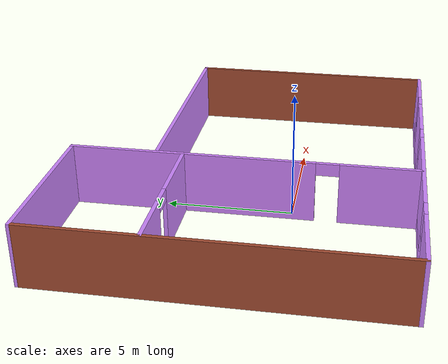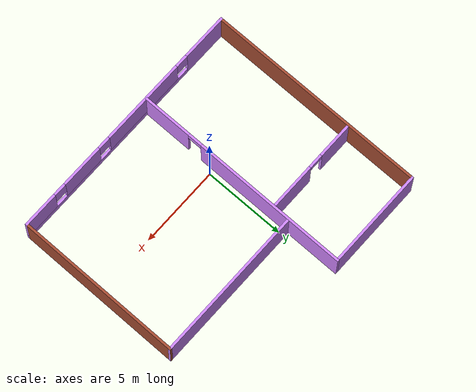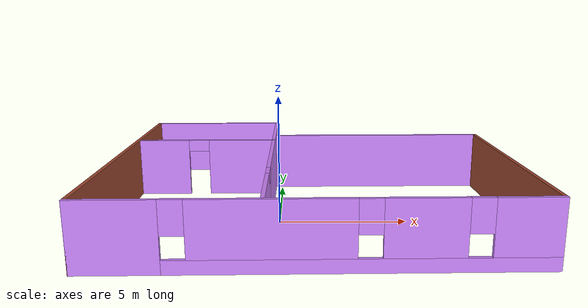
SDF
<?xml version='1.0'?>
<sdf version='1.6'>
  <model name='robothouse'>
    <pose frame=''>1.32 1.905 0 0 -0 0</pose>
    <link name='Wall_1'>
      <collision name='Wall_1_Collision'>
        <geometry>
          <box>
            <size>13.69 0.15 2.5</size>
          </box>
        </geometry>
        <pose frame=''>0 0 1.25 0 -0 0</pose>
      </collision>
      <visual name='Wall_1_Visual'>
        <pose frame=''>0 0 1.25 0 -0 0</pose>
        <geometry>
          <box>
            <size>13.69 0.15 2.5</size>
          </box>
        </geometry>
        <material>
          <script>
            <uri>file://media/materials/scripts/gazebo.material</uri>
            <name>Gazebo/Bricks</name>
          </script>
          <ambient>1 1 1 1</ambient>
        </material>
        <meta>
          <layer>0</layer>
        </meta>
      </visual>
      <pose frame=''>-7.8 -0.065 0 0 -0 1.5708</pose>
    </link>
    <link name='Wall_11'>
      <collision name='Wall_11_Collision'>
        <geometry>
          <box>
            <size>9.5 0.15 2.5</size>
          </box>
        </geometry>
        <pose frame=''>0 0 1.25 0 -0 0</pose>
      </collision>
      <visual name='Wall_11_Visual'>
        <pose frame=''>0 0 1.25 0 -0 0</pose>
        <geometry>
          <box>
            <size>9.5 0.15 2.5</size>
          </box>
        </geometry>
        <material>
          <script>
            <uri>file://media/materials/scripts/gazebo.material</uri>
            <name>Gazebo/Grey</name>
          </script>
          <ambient>0.803922 0.52549 1 1</ambient>
        </material>
        <meta>
          <layer>0</layer>
        </meta>
      </visual>
      <pose frame=''>3.125 3.415 0 0 -0 3.14159</pose>
    </link>
    <link name='Wall_17'>
      <collision name='Wall_17_Collision'>
        <geometry>
          <box>
            <size>6.25 0.15 2.5</size>
          </box>
        </geometry>
        <pose frame=''>0 0 1.25 0 -0 0</pose>
      </collision>
      <visual name='Wall_17_Visual'>
        <pose frame=''>0 0 1.25 0 -0 0</pose>
        <geometry>
          <box>
            <size>6.25 0.15 2.5</size>
          </box>
        </geometry>
        <material>
          <script>
            <uri>file://media/materials/scripts/gazebo.material</uri>
            <name>Gazebo/Grey</name>
          </script>
          <ambient>0.803922 0.52549 1 1</ambient>
        </material>
        <meta>
          <layer>0</layer>
        </meta>
      </visual>
      <pose frame=''>-4.74 6.835 0 0 -0 3.14159</pose>
    </link>
    <link name='Wall_27'>
      <pose frame=''>-1.69 0.035 0 0 0 -1.5708</pose>
      <visual name='Wall_27_Visual_0'>
        <pose frame=''>-2.0125 0 1.25 0 -0 0</pose>
        <geometry>
          <box>
            <size>9.725 0.15 2.5</size>
          </box>
        </geometry>
        <material>
          <script>
            <uri>file://media/materials/scripts/gazebo.material</uri>
            <name>Gazebo/Grey</name>
          </script>
          <ambient>0.819608 0.521569 1 1</ambient>
        </material>
        <meta>
          <layer>0</layer>
        </meta>
      </visual>
      <collision name='Wall_27_Collision_0'>
        <geometry>
          <box>
            <size>9.725 0.15 2.5</size>
          </box>
        </geometry>
        <pose frame=''>-2.0125 0 1.25 0 -0 0</pose>
      </collision>
      <visual name='Wall_27_Visual_1'>
        <pose frame=''>5.3125 0 1.25 0 -0 0</pose>
        <geometry>
          <box>
            <size>3.125 0.15 2.5</size>
          </box>
        </geometry>
        <material>
          <script>
            <uri>file://media/materials/scripts/gazebo.material</uri>
            <name>Gazebo/Grey</name>
          </script>
          <ambient>0.819608 0.521569 1 1</ambient>
        </material>
        <meta>
          <layer>0</layer>
        </meta>
      </visual>
      <collision name='Wall_27_Collision_1'>
        <geometry>
          <box>
            <size>3.125 0.15 2.5</size>
          </box>
        </geometry>
        <pose frame=''>5.3125 0 1.25 0 -0 0</pose>
      </collision>
      <visual name='Wall_27_Visual_2'>
        <pose frame=''>3.3 0 2.25 0 -0 0</pose>
        <geometry>
          <box>
            <size>0.9 0.15 0.5</size>
          </box>
        </geometry>
        <material>
          <script>
            <uri>file://media/materials/scripts/gazebo.material</uri>
            <name>Gazebo/Grey</name>
          </script>
          <ambient>0.819608 0.521569 1 1</ambient>
        </material>
        <meta>
          <layer>0</layer>
        </meta>
      </visual>
      <collision name='Wall_27_Collision_2'>
        <geometry>
          <box>
            <size>0.9 0.15 0.5</size>
          </box>
        </geometry>
        <pose frame=''>3.3 0 2.25 0 -0 0</pose>
      </collision>
    </link>
    <link name='Wall_29'>
      <pose frame=''>-4.74 2.355 0 0 -0 0</pose>
      <visual name='Wall_29_Visual_0'>
        <pose frame=''>-1.9525 0 1.25 0 -0 0</pose>
        <geometry>
          <box>
            <size>2.345 0.15 2.5</size>
          </box>
        </geometry>
        <material>
          <script>
            <uri>file://media/materials/scripts/gazebo.material</uri>
            <name>Gazebo/Grey</name>
          </script>
          <ambient>0.803922 0.52549 1 1</ambient>
        </material>
        <meta>
          <layer>0</layer>
        </meta>
      </visual>
      <collision name='Wall_29_Collision_0'>
        <geometry>
          <box>
            <size>2.345 0.15 2.5</size>
          </box>
        </geometry>
        <pose frame=''>-1.9525 0 1.25 0 -0 0</pose>
      </collision>
      <visual name='Wall_29_Visual_1'>
        <pose frame=''>1.6225 0 1.25 0 -0 0</pose>
        <geometry>
          <box>
            <size>3.005 0.15 2.5</size>
          </box>
        </geometry>
        <material>
          <script>
            <uri>file://media/materials/scripts/gazebo.material</uri>
            <name>Gazebo/Grey</name>
          </script>
          <ambient>0.803922 0.52549 1 1</ambient>
        </material>
        <meta>
          <layer>0</layer>
        </meta>
      </visual>
      <collision name='Wall_29_Collision_1'>
        <geometry>
          <box>
            <size>3.005 0.15 2.5</size>
          </box>
        </geometry>
        <pose frame=''>1.6225 0 1.25 0 -0 0</pose>
      </collision>
      <visual name='Wall_29_Visual_2'>
        <pose frame=''>-0.33 0 2.25 0 -0 0</pose>
        <geometry>
          <box>
            <size>0.9 0.15 0.5</size>
          </box>
        </geometry>
        <material>
          <script>
            <uri>file://media/materials/scripts/gazebo.material</uri>
            <name>Gazebo/Grey</name>
          </script>
          <ambient>0.803922 0.52549 1 1</ambient>
        </material>
        <meta>
          <layer>0</layer>
        </meta>
      </visual>
      <collision name='Wall_29_Collision_2'>
        <geometry>
          <box>
            <size>0.9 0.15 0.5</size>
          </box>
        </geometry>
        <pose frame=''>-0.33 0 2.25 0 -0 0</pose>
      </collision>
    </link>
    <link name='Wall_7'>
      <pose frame=''>0 -6.835 0 0 -0 0</pose>
      <visual name='Wall_7_Visual_0'>
        <pose frame=''>-6.4075 0 1.25 0 -0 0</pose>
        <geometry>
          <box>
            <size>2.935 0.15 2.5</size>
          </box>
        </geometry>
        <material>
          <script>
            <uri>file://media/materials/scripts/gazebo.material</uri>
            <name>Gazebo/Grey</name>
          </script>
          <ambient>0.803922 0.52549 1 1</ambient>
        </material>
        <meta>
          <layer>0</layer>
        </meta>
      </visual>
      <collision name='Wall_7_Collision_0'>
        <geometry>
          <box>
            <size>2.935 0.15 2.5</size>
          </box>
        </geometry>
        <pose frame=''>-6.4075 0 1.25 0 -0 0</pose>
      </collision>
      <visual name='Wall_7_Visual_1'>
        <pose frame=''>1.4675 0 0.25 0 -0 0</pose>
        <geometry>
          <box>
            <size>12.815 0.15 0.5</size>
          </box>
        </geometry>
        <material>
          <script>
            <uri>file://media/materials/scripts/gazebo.material</uri>
            <name>Gazebo/Grey</name>
          </script>
          <ambient>0.803922 0.52549 1 1</ambient>
        </material>
        <meta>
          <layer>0</layer>
        </meta>
      </visual>
      <collision name='Wall_7_Collision_1'>
        <geometry>
          <box>
            <size>12.815 0.15 0.5</size>
          </box>
        </geometry>
        <pose frame=''>1.4675 0 0.25 0 -0 0</pose>
      </collision>
      <visual name='Wall_7_Visual_2'>
        <pose frame=''>-1.415 0 1.5 0 -0 0</pose>
        <geometry>
          <box>
            <size>5.45 0.15 2</size>
          </box>
        </geometry>
        <material>
          <script>
            <uri>file://media/materials/scripts/gazebo.material</uri>
            <name>Gazebo/Grey</name>
          </script>
          <ambient>0.803922 0.52549 1 1</ambient>
        </material>
        <meta>
          <layer>0</layer>
        </meta>
      </visual>
      <collision name='Wall_7_Collision_2'>
        <geometry>
          <box>
            <size>5.45 0.15 2</size>
          </box>
        </geometry>
        <pose frame=''>-1.415 0 1.5 0 -0 0</pose>
      </collision>
      <visual name='Wall_7_Visual_3'>
        <pose frame=''>3.465 0 1.5 0 -0 0</pose>
        <geometry>
          <box>
            <size>2.71 0.15 2</size>
          </box>
        </geometry>
        <material>
          <script>
            <uri>file://media/materials/scripts/gazebo.material</uri>
            <name>Gazebo/Grey</name>
          </script>
          <ambient>0.803922 0.52549 1 1</ambient>
        </material>
        <meta>
          <layer>0</layer>
        </meta>
      </visual>
      <collision name='Wall_7_Collision_3'>
        <geometry>
          <box>
            <size>2.71 0.15 2</size>
          </box>
        </geometry>
        <pose frame=''>3.465 0 1.5 0 -0 0</pose>
      </collision>
      <visual name='Wall_7_Visual_4'>
        <pose frame=''>6.7475 0 1.5 0 -0 0</pose>
        <geometry>
          <box>
            <size>2.255 0.15 2</size>
          </box>
        </geometry>
        <material>
          <script>
            <uri>file://media/materials/scripts/gazebo.material</uri>
            <name>Gazebo/Grey</name>
          </script>
          <ambient>0.803922 0.52549 1 1</ambient>
        </material>
        <meta>
          <layer>0</layer>
        </meta>
      </visual>
      <collision name='Wall_7_Collision_4'>
        <geometry>
          <box>
            <size>2.255 0.15 2</size>
          </box>
        </geometry>
        <pose frame=''>6.7475 0 1.5 0 -0 0</pose>
      </collision>
      <visual name='Wall_7_Visual_5'>
        <pose frame=''>-4.54 0 1.9 0 -0 0</pose>
        <geometry>
          <box>
            <size>0.8 0.15 1.2</size>
          </box>
        </geometry>
        <material>
          <script>
            <uri>file://media/materials/scripts/gazebo.material</uri>
            <name>Gazebo/Grey</name>
          </script>
          <ambient>0.803922 0.52549 1 1</ambient>
        </material>
        <meta>
          <layer>0</layer>
        </meta>
      </visual>
      <collision name='Wall_7_Collision_5'>
        <geometry>
          <box>
            <size>0.8 0.15 1.2</size>
          </box>
        </geometry>
        <pose frame=''>-4.54 0 1.9 0 -0 0</pose>
      </collision>
      <visual name='Wall_7_Visual_6'>
        <pose frame=''>1.71 0 1.9 0 -0 0</pose>
        <geometry>
          <box>
            <size>0.8 0.15 1.2</size>
          </box>
        </geometry>
        <material>
          <script>
            <uri>file://media/materials/scripts/gazebo.material</uri>
            <name>Gazebo/Grey</name>
          </script>
          <ambient>0.803922 0.52549 1 1</ambient>
        </material>
        <meta>
          <layer>0</layer>
        </meta>
      </visual>
      <collision name='Wall_7_Collision_6'>
        <geometry>
          <box>
            <size>0.8 0.15 1.2</size>
          </box>
        </geometry>
        <pose frame=''>1.71 0 1.9 0 -0 0</pose>
      </collision>
      <visual name='Wall_7_Visual_7'>
        <pose frame=''>5.22 0 1.9 0 -0 0</pose>
        <geometry>
          <box>
            <size>0.8 0.15 1.2</size>
          </box>
        </geometry>
        <material>
          <script>
            <uri>file://media/materials/scripts/gazebo.material</uri>
            <name>Gazebo/Grey</name>
          </script>
          <ambient>0.803922 0.52549 1 1</ambient>
        </material>
        <meta>
          <layer>0</layer>
        </meta>
      </visual>
      <collision name='Wall_7_Collision_7'>
        <geometry>
          <box>
            <size>0.8 0.15 1.2</size>
          </box>
        </geometry>
        <pose frame=''>5.22 0 1.9 0 -0 0</pose>
      </collision>
    </link>
    <link name='Wall_9'>
      <collision name='Wall_9_Collision'>
        <geometry>
          <box>
            <size>10.25 0.15 2.5</size>
          </box>
        </geometry>
        <pose frame=''>0 0 1.25 0 -0 0</pose>
      </collision>
      <visual name='Wall_9_Visual'>
        <pose frame=''>0 0 1.25 0 -0 0</pose>
        <geometry>
          <box>
            <size>10.25 0.15 2.5</size>
          </box>
        </geometry>
        <material>
          <script>
            <uri>file://media/materials/scripts/gazebo.material</uri>
            <name>Gazebo/Bricks</name>
          </script>
          <ambient>0.819608 0.521569 1 1</ambient>
        </material>
        <meta>
          <layer>0</layer>
        </meta>
      </visual>
      <pose frame=''>7.8 -1.635 0 0 -0 1.5708</pose>
    </link>
    <static>1</static>
  </model>
</sdf>
